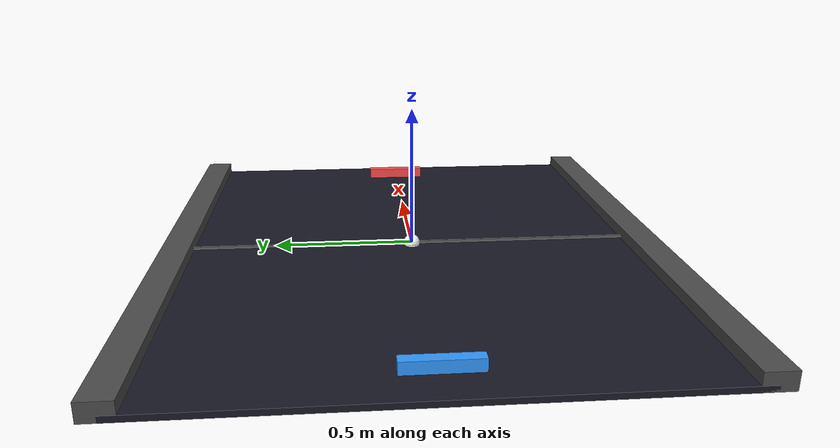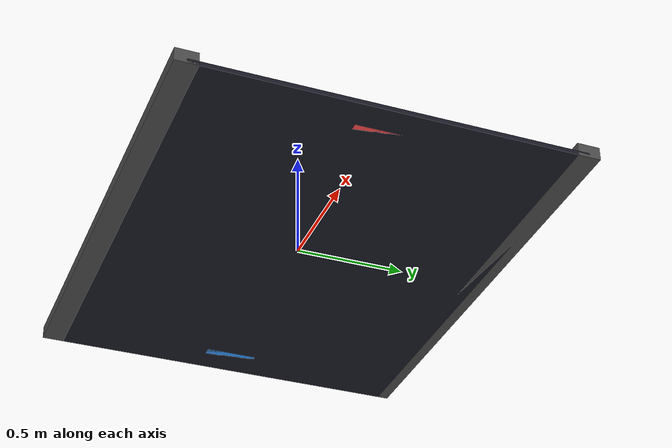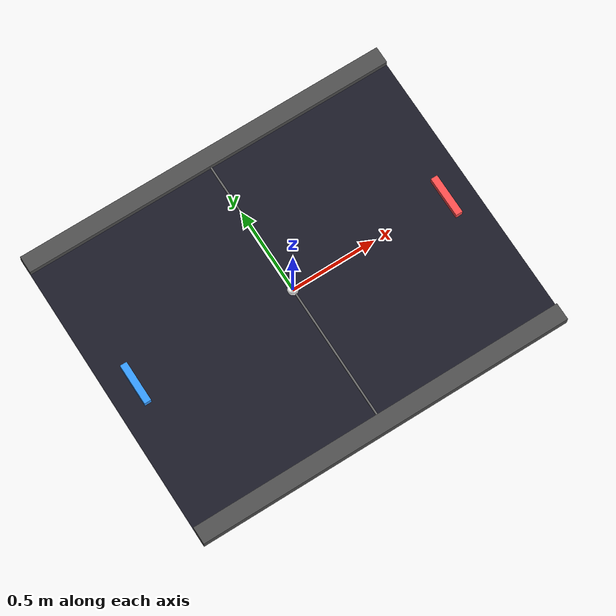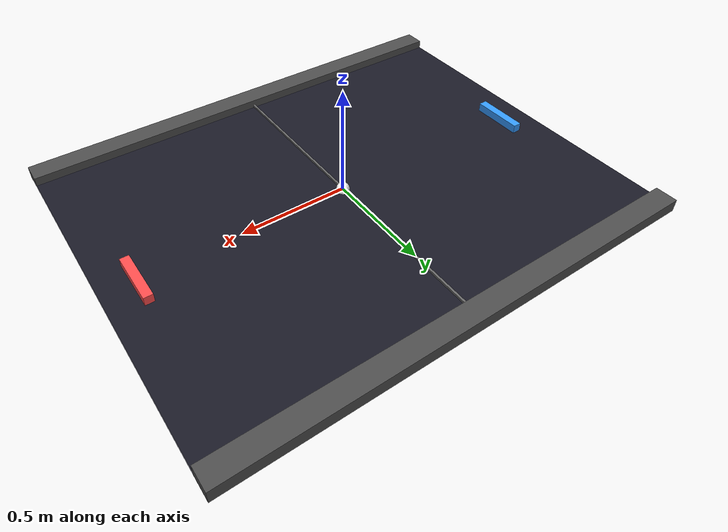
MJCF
<mujoco model="pong">
  <option gravity="0 0 0" timestep="0.002" integrator="implicit" cone="elliptic">
    <flag warmstart="enable"/>
  </option>

  <default>
    <geom condim="1" friction="0 0 0"
          solref="-50000 -0.1"
          solimp="0.999 0.9999 0.0001 0.5 2"/>
    <joint damping="0" armature="0"/>
  </default>

  <asset>
    <material name="paddle_left" rgba="0.2 0.6 1.0 1"/>
    <material name="paddle_right" rgba="1.0 0.3 0.3 1"/>
    <material name="ball" rgba="1.0 1.0 1.0 1"/>
    <material name="wall" rgba="0.3 0.3 0.3 1"/>
    <material name="table" rgba="0.1 0.1 0.15 1"/>
  </asset>

  <worldbody>
    <!-- Table surface (visual only) -->
    <geom name="table" type="box" size="1.1 0.85 0.01" pos="0 0 -0.02"
          material="table" contype="0" conaffinity="0"/>

    <!-- Center line (visual only) -->
    <geom name="centerline" type="box" size="0.005 0.8 0.005" pos="0 0 0"
          rgba="0.4 0.4 0.4 1" contype="0" conaffinity="0"/>

    <!-- Top wall -->
    <geom name="wall_top" type="box" size="1.1 0.05 0.03" pos="0 0.85 0"
          material="wall" contype="1" conaffinity="1"/>

    <!-- Bottom wall -->
    <geom name="wall_bottom" type="box" size="1.1 0.05 0.03" pos="0 -0.85 0"
          material="wall" contype="1" conaffinity="1"/>

    <!-- Ball - very light for responsive bounces -->
    <body name="ball" pos="0 0 0">
      <joint name="ball_x" type="slide" axis="1 0 0" range="-1.2 1.2" damping="0"/>
      <joint name="ball_y" type="slide" axis="0 1 0" range="-0.9 0.9" damping="0"/>
      <geom name="ball" type="sphere" size="0.03" mass="0.005"
            material="ball" contype="1" conaffinity="1"/>
    </body>

    <!-- Left paddle (human player) - heavy for solid hits, low damping for snappy response -->
    <body name="paddle_left" pos="-0.95 0 0">
      <joint name="paddle_left_y" type="slide" axis="0 1 0" range="-0.65 0.65" damping="2"/>
      <geom name="paddle_left" type="box" size="0.02 0.12 0.03" mass="1.0"
            material="paddle_left" contype="1" conaffinity="1"/>
    </body>

    <!-- Right paddle (AI player) - heavy for solid hits, low damping for snappy response -->
    <body name="paddle_right" pos="0.95 0 0">
      <joint name="paddle_right_y" type="slide" axis="0 1 0" range="-0.65 0.65" damping="2"/>
      <geom name="paddle_right" type="box" size="0.02 0.12 0.03" mass="1.0"
            material="paddle_right" contype="1" conaffinity="1"/>
    </body>
  </worldbody>

  <actuator>
    <!-- Velocity actuators for paddle control - very high kv for arcade-like response -->
    <velocity name="paddle_left_vel" joint="paddle_left_y" kv="2000" ctrlrange="-10 10"/>
    <velocity name="paddle_right_vel" joint="paddle_right_y" kv="2000" ctrlrange="-10 10"/>
  </actuator>

  <sensor>
    <jointpos name="ball_x_pos" joint="ball_x"/>
    <jointpos name="ball_y_pos" joint="ball_y"/>
    <jointvel name="ball_x_vel" joint="ball_x"/>
    <jointvel name="ball_y_vel" joint="ball_y"/>
    <jointpos name="paddle_left_pos" joint="paddle_left_y"/>
    <jointpos name="paddle_right_pos" joint="paddle_right_y"/>
  </sensor>
</mujoco>
